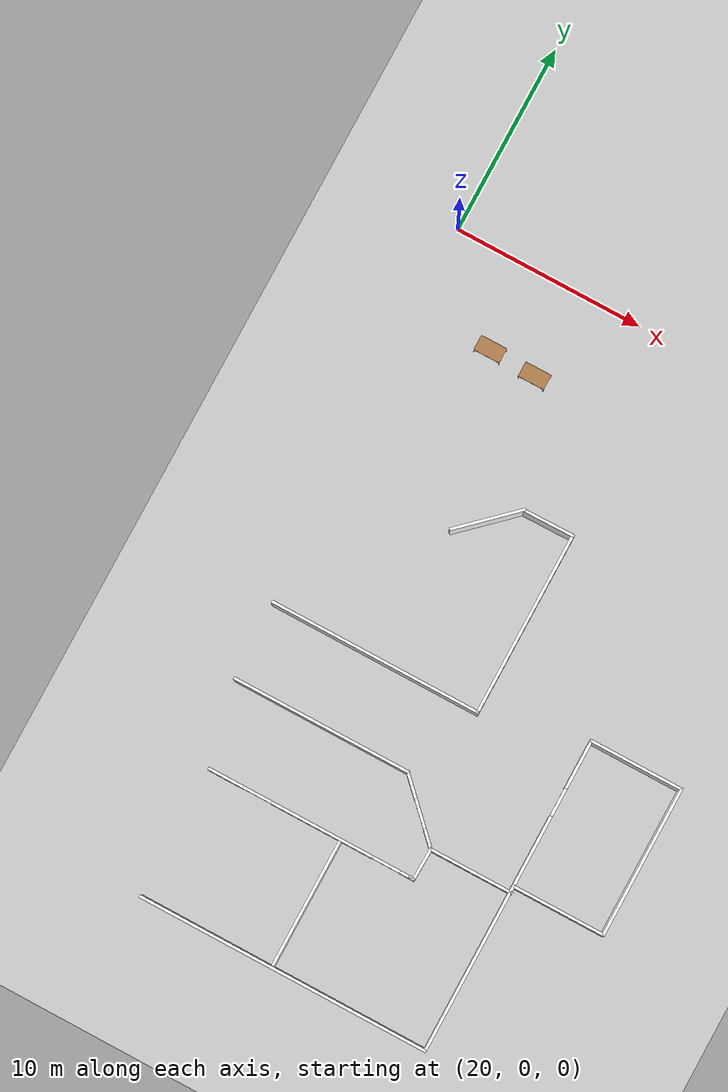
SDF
<sdf version="1.6">
 <world name="default">
  <model name="ground_plane">
   <static>1</static>
   <link name="link">
    <collision name="collision">
     <geometry><plane><normal>0 0 1</normal><size>100 100</size></plane></geometry>
     <surface><friction><ode><mu>100</mu><mu2>50</mu2></ode></friction></surface>
    </collision>
    <visual name="visual">
     <cast_shadows>0</cast_shadows>
     <geometry><plane><normal>0 0 1</normal><size>100 100</size></plane></geometry>
     <material>
      <script>
       <uri>model://office_env/materials/scripts</uri>
       <uri>model://office_env/materials/textures</uri>
       <name>wall</name>
      </script>
     </material>
    </visual>
   </link>
  </model>
  <model name="aule_N">
   <pose>0.1887 -1.4289 0 0 -0 0</pose>
   <link name="Wall_186">
    <pose>37.2203 -21.5545 0 0 0 -1.5708</pose>
    <visual name="Wall_186_Visual_0">
     <pose>-2.80179 0 1.25 0 -0 0</pose>
     <geometry><box><size>2.64642 0.15 2.5</size></box></geometry>
     <material>
      <script>
       <uri>model://office_env/materials/scripts</uri>
       <uri>model://office_env/materials/textures</uri>
       <name>wall</name>
      </script>
      <ambient>1 1 1 1</ambient>
     </material>
    </visual>
    <collision name="Wall_186_Collision_0">
     <geometry><box><size>2.64642 0.15 2.5</size></box></geometry>
     <pose>-2.80179 0 1.25 0 -0 0</pose>
    </collision>
    <visual name="Wall_186_Visual_1">
     <pose>2.07321 0 1.25 0 -0 0</pose>
     <geometry><box><size>4.10358 0.15 2.5</size></box></geometry>
     <material>
      <script>
       <uri>model://office_env/materials/scripts</uri>
       <uri>model://office_env/materials/textures</uri>
       <name>wall</name>
      </script>
      <ambient>1 1 1 1</ambient>
     </material>
    </visual>
    <collision name="Wall_186_Collision_1">
     <geometry><box><size>4.10358 0.15 2.5</size></box></geometry>
     <pose>2.07321 0 1.25 0 -0 0</pose>
    </collision>
    <visual name="Wall_186_Visual_2">
     <pose>-0.728584 0 2.25 0 -0 0</pose>
     <geometry><box><size>1.5 0.15 0.5</size></box></geometry>
     <material>
      <script>
       <uri>model://office_env/materials/scripts</uri>
       <uri>model://office_env/materials/textures</uri>
       <name>wall</name>
      </script>
      <ambient>1 1 1 1</ambient>
     </material>
    </visual>
    <collision name="Wall_186_Collision_2">
     <geometry><box><size>1.5 0.15 0.5</size></box></geometry>
     <pose>-0.728584 0 2.25 0 -0 0</pose>
    </collision>
   </link>
   <link name="Wall_192">
    <collision name="Wall_192_Collision">
     <geometry><box><size>9.5 0.15 2.5</size></box></geometry>
     <pose>0 0 1.25 0 -0 0</pose>
    </collision>
    <visual name="Wall_192_Visual">
     <pose>0 0 1.25 0 -0 0</pose>
     <geometry><box><size>9.5 0.15 2.5</size></box></geometry>
     <material>
      <script>
       <uri>model://office_env/materials/scripts</uri>
       <uri>model://office_env/materials/textures</uri>
       <name>wall</name>
      </script>
      <ambient>1 1 1 1</ambient>
     </material>
    </visual>
    <pose>25.5356 -22.9551 0 0 -0 0</pose>
   </link>
   <link name="Wall_193">
    <pose>31.5718 -24.3163 0 0 0 -0.785398</pose>
    <visual name="Wall_193_Visual_0">
     <pose>-1.29532 0 1.25 0 -0 0</pose>
     <geometry><box><size>1.40936 0.15 2.5</size></box></geometry>
     <material>
      <script>
       <uri>model://office_env/materials/scripts</uri>
       <uri>model://office_env/materials/textures</uri>
       <name>wall</name>
      </script>
      <ambient>1 1 1 1</ambient>
     </material>
    </visual>
    <collision name="Wall_193_Collision_0">
     <geometry><box><size>1.40936 0.15 2.5</size></box></geometry>
     <pose>-1.29532 0 1.25 0 -0 0</pose>
    </collision>
    <visual name="Wall_193_Visual_1">
     <pose>1.45468 0 1.25 0 -0 0</pose>
     <geometry><box><size>1.09064 0.15 2.5</size></box></geometry>
     <material>
      <script>
       <uri>model://office_env/materials/scripts</uri>
       <uri>model://office_env/materials/textures</uri>
       <name>wall</name>
      </script>
      <ambient>1 1 1 1</ambient>
     </material>
    </visual>
    <collision name="Wall_193_Collision_1">
     <geometry><box><size>1.09064 0.15 2.5</size></box></geometry>
     <pose>1.45468 0 1.25 0 -0 0</pose>
    </collision>
    <visual name="Wall_193_Visual_2">
     <pose>0.15936 0 2.25 0 -0 0</pose>
     <geometry><box><size>1.5 0.15 0.5</size></box></geometry>
     <material>
      <script>
       <uri>model://office_env/materials/scripts</uri>
       <uri>model://office_env/materials/textures</uri>
       <name>wall</name>
      </script>
      <ambient>1 1 1 1</ambient>
     </material>
    </visual>
    <collision name="Wall_193_Collision_2">
     <geometry><box><size>1.5 0.15 0.5</size></box></geometry>
     <pose>0.15936 0 2.25 0 -0 0</pose>
    </collision>
   </link>
   <link name="Wall_194">
    <collision name="Wall_194_Collision">
     <geometry><box><size>4.5 0.15 2.5</size></box></geometry>
     <pose>0 0 1.25 0 -0 0</pose>
    </collision>
    <visual name="Wall_194_Visual">
     <pose>0 0 1.25 0 -0 0</pose>
     <geometry><box><size>4.5 0.15 2.5</size></box></geometry>
     <material>
      <script>
       <uri>model://office_env/materials/scripts</uri>
       <uri>model://office_env/materials/textures</uri>
       <name>wall</name>
      </script>
      <ambient>1 1 1 1</ambient>
     </material>
    </visual>
    <pose>35.1079 -25.6775 0 0 -0 0</pose>
   </link>
   <link name="Wall_204">
    <pose>27.2658 -27.3162 0 0 -0 0</pose>
    <visual name="Wall_204_Visual_0">
     <pose>-4.54037 0 1.25 0 -0 0</pose>
     <geometry><box><size>1.91926 0.15 2.5</size></box></geometry>
     <material>
      <script>
       <uri>model://office_env/materials/scripts</uri>
       <uri>model://office_env/materials/textures</uri>
       <name>wall</name>
      </script>
      <ambient>1 1 1 1</ambient>
     </material>
    </visual>
    <collision name="Wall_204_Collision_0">
     <geometry><box><size>1.91926 0.15 2.5</size></box></geometry>
     <pose>-4.54037 0 1.25 0 -0 0</pose>
    </collision>
    <visual name="Wall_204_Visual_1">
     <pose>0.656549 0 1.25 0 -0 0</pose>
     <geometry><box><size>5.47457 0.15 2.5</size></box></geometry>
     <material>
      <script>
       <uri>model://office_env/materials/scripts</uri>
       <uri>model://office_env/materials/textures</uri>
       <name>wall</name>
      </script>
      <ambient>1 1 1 1</ambient>
     </material>
    </visual>
    <collision name="Wall_204_Collision_1">
     <geometry><box><size>5.47457 0.15 2.5</size></box></geometry>
     <pose>0.656549 0 1.25 0 -0 0</pose>
    </collision>
    <visual name="Wall_204_Visual_2">
     <pose>5.19692 0 1.25 0 -0 0</pose>
     <geometry><box><size>0.606165 0.15 2.5</size></box></geometry>
     <material>
      <script>
       <uri>model://office_env/materials/scripts</uri>
       <uri>model://office_env/materials/textures</uri>
       <name>wall</name>
      </script>
      <ambient>1 1 1 1</ambient>
     </material>
    </visual>
    <collision name="Wall_204_Collision_2">
     <geometry><box><size>0.606165 0.15 2.5</size></box></geometry>
     <pose>5.19692 0 1.25 0 -0 0</pose>
    </collision>
    <visual name="Wall_204_Visual_3">
     <pose>-2.83074 0 2.25 0 -0 0</pose>
     <geometry><box><size>1.5 0.15 0.5</size></box></geometry>
     <material>
      <script>
       <uri>model://office_env/materials/scripts</uri>
       <uri>model://office_env/materials/textures</uri>
       <name>wall</name>
      </script>
      <ambient>1 1 1 1</ambient>
     </material>
    </visual>
    <collision name="Wall_204_Collision_3">
     <geometry><box><size>1.5 0.15 0.5</size></box></geometry>
     <pose>-2.83074 0 2.25 0 -0 0</pose>
    </collision>
    <visual name="Wall_204_Visual_4">
     <pose>4.14384 0 2.25 0 -0 0</pose>
     <geometry><box><size>1.5 0.15 0.5</size></box></geometry>
     <material>
      <script>
       <uri>model://office_env/materials/scripts</uri>
       <uri>model://office_env/materials/textures</uri>
       <name>wall</name>
      </script>
      <ambient>1 1 1 1</ambient>
     </material>
    </visual>
    <collision name="Wall_204_Collision_4">
     <geometry><box><size>1.5 0.15 0.5</size></box></geometry>
     <pose>4.14384 0 2.25 0 -0 0</pose>
    </collision>
   </link>
   <link name="Wall_205">
    <collision name="Wall_205_Collision">
     <geometry><box><size>0.25 0.15 2.5</size></box></geometry>
     <pose>0 0 1.25 0 -0 0</pose>
    </collision>
    <visual name="Wall_205_Visual">
     <pose>0 0 1.25 0 -0 0</pose>
     <geometry><box><size>0.25 0.15 2.5</size></box></geometry>
     <material>
      <script>
       <uri>model://office_env/materials/scripts</uri>
       <uri>model://office_env/materials/textures</uri>
       <name>wall</name>
      </script>
      <ambient>1 1 1 1</ambient>
     </material>
    </visual>
    <pose>32.7408 -27.3162 0 0 -0 0</pose>
   </link>
   <link name="Wall_206">
    <collision name="Wall_206_Collision">
     <geometry><box><size>0.25 0.15 2.5</size></box></geometry>
     <pose>0 0 1.25 0 -0 0</pose>
    </collision>
    <visual name="Wall_206_Visual">
     <pose>0 0 1.25 0 -0 0</pose>
     <geometry><box><size>0.25 0.15 2.5</size></box></geometry>
     <material>
      <script>
       <uri>model://office_env/materials/scripts</uri>
       <uri>model://office_env/materials/textures</uri>
       <name>wall</name>
      </script>
      <ambient>1 1 1 1</ambient>
     </material>
    </visual>
    <pose>32.8408 -27.3162 0 0 -0 0</pose>
   </link>
   <link name="Wall_207">
    <collision name="Wall_207_Collision">
     <geometry><box><size>1.78929 0.15 2.5</size></box></geometry>
     <pose>0 0 1.25 0 -0 0</pose>
    </collision>
    <visual name="Wall_207_Visual">
     <pose>0 0 1.25 0 -0 0</pose>
     <geometry><box><size>1.78929 0.15 2.5</size></box></geometry>
     <material>
      <script>
       <uri>model://office_env/materials/scripts</uri>
       <uri>model://office_env/materials/textures</uri>
       <name>wall</name>
      </script>
      <ambient>1 1 1 1</ambient>
     </material>
    </visual>
    <pose>32.9119 -26.4969 0 0 -0 1.54509</pose>
   </link>
   <link name="Wall_233">
    <collision name="Wall_233_Collision">
     <geometry><box><size>15.5 0.15 2.5</size></box></geometry>
     <pose>0 0 1.25 0 -0 0</pose>
    </collision>
    <visual name="Wall_233_Visual">
     <pose>0 0 1.25 0 -0 0</pose>
     <geometry><box><size>15.5 0.15 2.5</size></box></geometry>
     <material>
      <script>
       <uri>model://office_env/materials/scripts</uri>
       <uri>model://office_env/materials/textures</uri>
       <name>wall</name>
      </script>
      <ambient>1 1 1 1</ambient>
     </material>
    </visual>
    <pose>29.5453 -34.2006 0 0 -0 3.14159</pose>
   </link>
   <link name="Wall_240">
    <collision name="Wall_240_Collision">
     <geometry><box><size>6.75 0.15 2.5</size></box></geometry>
     <pose>0 0 1.25 0 -0 0</pose>
    </collision>
    <visual name="Wall_240_Visual">
     <pose>0 0 1.25 0 -0 0</pose>
     <geometry><box><size>6.75 0.15 2.5</size></box></geometry>
     <material>
      <script>
       <uri>model://office_env/materials/scripts</uri>
       <uri>model://office_env/materials/textures</uri>
       <name>wall</name>
      </script>
      <ambient>1 1 1 1</ambient>
     </material>
    </visual>
    <pose>28.9447 -30.738 0 0 0 -1.5708</pose>
   </link>
   <link name="Wall_27">
    <collision name="Wall_27_Collision">
     <geometry><box><size>8.99611 0.15 2.5</size></box></geometry>
     <pose>0 0 1.25 0 -0 0</pose>
    </collision>
    <visual name="Wall_27_Visual">
     <pose>0 0 1.25 0 -0 0</pose>
     <geometry><box><size>8.99611 0.15 2.5</size></box></geometry>
     <material>
      <script>
       <uri>model://office_env/materials/scripts</uri>
       <uri>model://office_env/materials/textures</uri>
       <name>wall</name>
      </script>
      <ambient>1 1 1 1</ambient>
     </material>
    </visual>
    <pose>37.2203 -29.7776 0 0 -0 1.5708</pose>
   </link>
   <link name="Wall_34">
    <collision name="Wall_34_Collision">
     <geometry><box><size>5 0.15 2.5</size></box></geometry>
     <pose>0 0 1.25 0 -0 0</pose>
    </collision>
    <visual name="Wall_34_Visual">
     <pose>0 0 1.25 0 -0 0</pose>
     <geometry><box><size>5 0.15 2.5</size></box></geometry>
     <material>
      <script>
       <uri>model://office_env/materials/scripts</uri>
       <uri>model://office_env/materials/textures</uri>
       <name>wall</name>
      </script>
      <ambient>1 1 1 1</ambient>
     </material>
    </visual>
    <pose>39.6453 -25.3545 0 0 -0 0</pose>
   </link>
   <link name="Wall_35">
    <collision name="Wall_35_Collision">
     <geometry><box><size>8 0.15 2.5</size></box></geometry>
     <pose>0 0 1.25 0 -0 0</pose>
    </collision>
    <visual name="Wall_35_Visual">
     <pose>0 0 1.25 0 -0 0</pose>
     <geometry><box><size>8 0.15 2.5</size></box></geometry>
     <material>
      <script>
       <uri>model://office_env/materials/scripts</uri>
       <uri>model://office_env/materials/textures</uri>
       <name>wall</name>
      </script>
      <ambient>1 1 1 1</ambient>
     </material>
    </visual>
    <pose>42.0703 -21.4295 0 0 -0 1.5708</pose>
   </link>
   <link name="Wall_36">
    <collision name="Wall_36_Collision">
     <geometry><box><size>5 0.15 2.5</size></box></geometry>
     <pose>0 0 1.25 0 -0 0</pose>
    </collision>
    <visual name="Wall_36_Visual">
     <pose>0 0 1.25 0 -0 0</pose>
     <geometry><box><size>5 0.15 2.5</size></box></geometry>
     <material>
      <script>
       <uri>model://office_env/materials/scripts</uri>
       <uri>model://office_env/materials/textures</uri>
       <name>wall</name>
      </script>
      <ambient>1 1 1 1</ambient>
     </material>
    </visual>
    <pose>39.6453 -17.5045 0 0 -0 3.14159</pose>
   </link>
   <link name="Wall_74">
    <collision name="Wall_74_Collision">
     <geometry><box><size>2.7028 0.15 2.5</size></box></geometry>
     <pose>0 0 1.25 0 -0 0</pose>
    </collision>
    <visual name="Wall_74_Visual">
     <pose>0 0 1.25 0 -0 0</pose>
     <geometry><box><size>2.7028 0.15 2.5</size></box></geometry>
     <material>
      <script>
       <uri>model://office_env/materials/scripts</uri>
       <uri>model://office_env/materials/textures</uri>
       <name>wall</name>
      </script>
      <ambient>1 1 1 1</ambient>
     </material>
    </visual>
    <pose>30.5208 -9.29683 0 0 0 -3.12997</pose>
   </link>
   <link name="Wall_80">
    <collision name="Wall_80_Collision">
     <geometry><box><size>3.78679 0.15 2.5</size></box></geometry>
     <pose>0 0 1.25 0 -0 0</pose>
    </collision>
    <visual name="Wall_80_Visual">
     <pose>0 0 1.25 0 -0 0</pose>
     <geometry><box><size>3.78679 0.15 2.5</size></box></geometry>
     <material>
      <script>
       <uri>model://office_env/materials/scripts</uri>
       <uri>model://office_env/materials/textures</uri>
       <name>wall</name>
      </script>
      <ambient>1 1 1 1</ambient>
     </material>
    </visual>
    <pose>27.8481 -10.5208 0 0 0 -2.38797</pose>
   </link>
   <link name="Wall_94">
    <collision name="Wall_94_Collision">
     <geometry><box><size>9.75 0.15 2.5</size></box></geometry>
     <pose>0 0 1.25 0 -0 0</pose>
    </collision>
    <visual name="Wall_94_Visual">
     <pose>0 0 1.25 0 -0 0</pose>
     <geometry><box><size>9.75 0.15 2.5</size></box></geometry>
     <material>
      <script>
       <uri>model://office_env/materials/scripts</uri>
       <uri>model://office_env/materials/textures</uri>
       <name>wall</name>
      </script>
      <ambient>1 1 1 1</ambient>
     </material>
    </visual>
    <pose>31.7971 -14.082 0 0 0 -1.5708</pose>
   </link>
   <link name="Wall_95">
    <collision name="Wall_95_Collision">
     <geometry><box><size>11.25 0.15 2.5</size></box></geometry>
     <pose>0 0 1.25 0 -0 0</pose>
    </collision>
    <visual name="Wall_95_Visual">
     <pose>0 0 1.25 0 -0 0</pose>
     <geometry><box><size>11.25 0.15 2.5</size></box></geometry>
     <material>
      <script>
       <uri>model://office_env/materials/scripts</uri>
       <uri>model://office_env/materials/textures</uri>
       <name>wall</name>
      </script>
      <ambient>1 1 1 1</ambient>
     </material>
    </visual>
    <pose>26.2471 -18.882 0 0 -0 3.14159</pose>
   </link>
   <static>1</static>
  </model>
  <model name="table_11">
   <static>0</static>
   <link name="link">
    <collision name="surface">
     <pose>0 0 1 0 -0 0</pose>
     <geometry><box><size>1.5 0.8 0.03</size></box></geometry>
     <surface><friction><ode><mu>0.6</mu><mu2>0.6</mu2></ode></friction></surface>
    </collision>
    <visual name="visual1">
     <pose>0 0 1 0 -0 0</pose>
     <geometry><box><size>1.4 0.8 0.04</size></box></geometry>
     <material>
      <script><uri>file://media/materials/scripts/gazebo.material</uri><name>Gazebo/Wood</name></script>
     </material>
    </visual>
    <collision name="front_left_leg">
     <pose>0.68 0.38 0.5 0 -0 0</pose>
     <geometry><cylinder><radius>0.02</radius><length>1</length></cylinder></geometry>
    </collision>
    <visual name="front_left_leg">
     <pose>0.68 0.38 0.5 0 -0 0</pose>
     <geometry><cylinder><radius>0.02</radius><length>1</length></cylinder></geometry>
     <material>
      <script>
       <uri>model://office_env/materials/scripts</uri>
       <uri>model://office_env/materials/textures</uri>
       <name>wall</name>
      </script>
     </material>
    </visual>
    <collision name="front_right_leg">
     <pose>0.68 -0.38 0.5 0 -0 0</pose>
     <geometry><cylinder><radius>0.02</radius><length>1</length></cylinder></geometry>
    </collision>
    <visual name="front_right_leg">
     <pose>0.68 -0.38 0.5 0 -0 0</pose>
     <geometry><cylinder><radius>0.02</radius><length>1</length></cylinder></geometry>
     <material>
      <script>
       <uri>model://office_env/materials/scripts</uri>
       <uri>model://office_env/materials/textures</uri>
       <name>wall</name>
      </script>
     </material>
    </visual>
    <collision name="back_right_leg">
     <pose>-0.68 -0.38 0.5 0 -0 0</pose>
     <geometry><cylinder><radius>0.02</radius><length>1</length></cylinder></geometry>
    </collision>
    <visual name="back_right_leg">
     <pose>-0.68 -0.38 0.5 0 -0 0</pose>
     <geometry><cylinder><radius>0.02</radius><length>1</length></cylinder></geometry>
     <material>
      <script>
       <uri>model://office_env/materials/scripts</uri>
       <uri>model://office_env/materials/textures</uri>
       <name>wall</name>
      </script>
     </material>
    </visual>
    <collision name="back_left_leg">
     <pose>-0.68 0.38 0.5 0 -0 0</pose>
     <geometry><cylinder><radius>0.02</radius><length>1</length></cylinder></geometry>
    </collision>
    <visual name="back_left_leg">
     <pose>-0.68 0.38 0.5 0 -0 0</pose>
     <geometry><cylinder><radius>0.02</radius><length>1</length></cylinder></geometry>
     <material>
      <script>
       <uri>model://office_env/materials/scripts</uri>
       <uri>model://office_env/materials/textures</uri>
       <name>wall</name>
      </script>
     </material>
    </visual>
    <inertial>
     <inertia><ixx>1</ixx><ixy>0</ixy><ixz>0</ixz><iyy>1</iyy><iyz>0</iyz><izz>1</izz></inertia>
     <mass>1</mass>
    </inertial>
   </link>
   <pose>26.6947 -4.63996 0.009992 0 -0 0</pose>
  </model>
  <model name="table_14">
   <static>0</static>
   <link name="link">
    <collision name="surface">
     <pose>0 0 1 0 -0 0</pose>
     <geometry><box><size>1.5 0.8 0.03</size></box></geometry>
     <surface><friction><ode><mu>0.6</mu><mu2>0.6</mu2></ode></friction></surface>
    </collision>
    <visual name="visual1">
     <pose>0 0 1 0 -0 0</pose>
     <geometry><box><size>1.4 0.8 0.04</size></box></geometry>
     <material>
      <script><uri>file://media/materials/scripts/gazebo.material</uri><name>Gazebo/Wood</name></script>
     </material>
    </visual>
    <collision name="front_left_leg">
     <pose>0.68 0.38 0.5 0 -0 0</pose>
     <geometry><cylinder><radius>0.02</radius><length>1</length></cylinder></geometry>
    </collision>
    <visual name="front_left_leg">
     <pose>0.68 0.38 0.5 0 -0 0</pose>
     <geometry><cylinder><radius>0.02</radius><length>1</length></cylinder></geometry>
     <material>
      <script>
       <uri>model://office_env/materials/scripts</uri>
       <uri>model://office_env/materials/textures</uri>
       <name>wall</name>
      </script>
     </material>
    </visual>
    <collision name="front_right_leg">
     <pose>0.68 -0.38 0.5 0 -0 0</pose>
     <geometry><cylinder><radius>0.02</radius><length>1</length></cylinder></geometry>
    </collision>
    <visual name="front_right_leg">
     <pose>0.68 -0.38 0.5 0 -0 0</pose>
     <geometry><cylinder><radius>0.02</radius><length>1</length></cylinder></geometry>
     <material>
      <script>
       <uri>model://office_env/materials/scripts</uri>
       <uri>model://office_env/materials/textures</uri>
       <name>wall</name>
      </script>
     </material>
    </visual>
    <collision name="back_right_leg">
     <pose>-0.68 -0.38 0.5 0 -0 0</pose>
     <geometry><cylinder><radius>0.02</radius><length>1</length></cylinder></geometry>
    </collision>
    <visual name="back_right_leg">
     <pose>-0.68 -0.38 0.5 0 -0 0</pose>
     <geometry><cylinder><radius>0.02</radius><length>1</length></cylinder></geometry>
     <material>
      <script>
       <uri>model://office_env/materials/scripts</uri>
       <uri>model://office_env/materials/textures</uri>
       <name>wall</name>
      </script>
     </material>
    </visual>
    <collision name="back_left_leg">
     <pose>-0.68 0.38 0.5 0 -0 0</pose>
     <geometry><cylinder><radius>0.02</radius><length>1</length></cylinder></geometry>
    </collision>
    <visual name="back_left_leg">
     <pose>-0.68 0.38 0.5 0 -0 0</pose>
     <geometry><cylinder><radius>0.02</radius><length>1</length></cylinder></geometry>
     <material>
      <script>
       <uri>model://office_env/materials/scripts</uri>
       <uri>model://office_env/materials/textures</uri>
       <name>wall</name>
      </script>
     </material>
    </visual>
    <inertial>
     <inertia><ixx>1</ixx><ixy>0</ixy><ixz>0</ixz><iyy>1</iyy><iyz>0</iyz><izz>1</izz></inertia>
     <mass>1</mass>
    </inertial>
   </link>
   <pose>24.199 -4.51956 0.009992 0 -0 0</pose>
  </model>
 </world>
</sdf>
